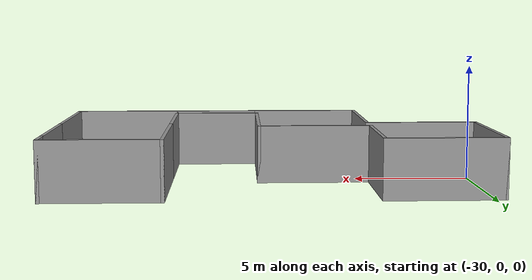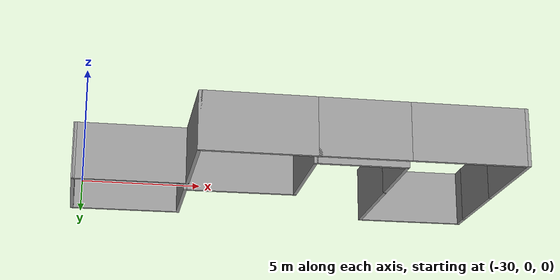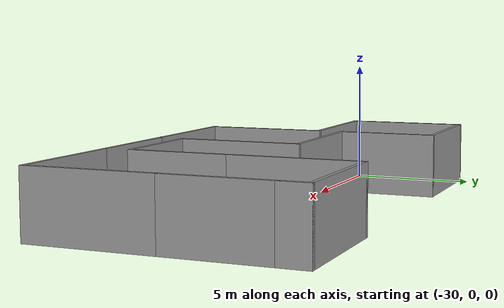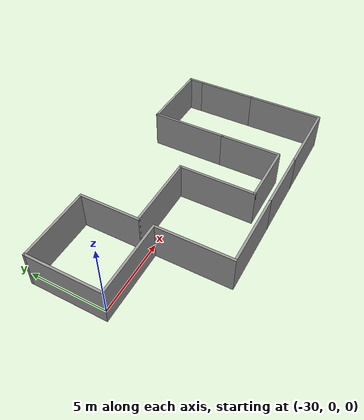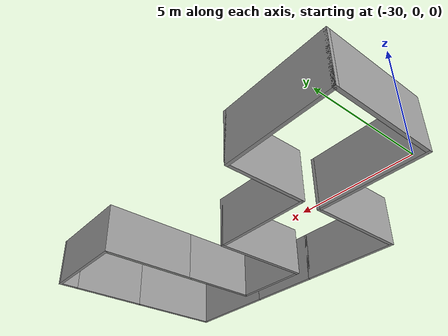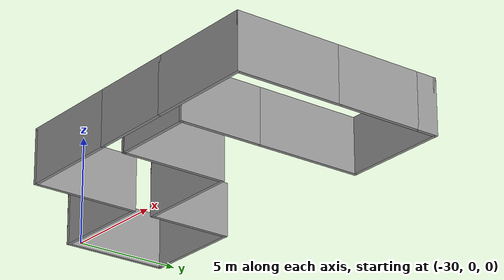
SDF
<?xml version='1.0'?>
<sdf version='1.6'>
  <model name='course1'>
    <pose frame=''>-21.2127 -0.339408 0 0 -0 0</pose>
    <link name='Wall_16'>
      <collision name='Wall_16_Collision'>
        <geometry>
          <box>
            <size>5 0.15 2.5</size>
          </box>
        </geometry>
        <pose frame=''>0 0 1.25 0 -0 0</pose>
      </collision>
      <visual name='Wall_16_Visual'>
        <pose frame=''>0 0 1.25 0 -0 0</pose>
        <geometry>
          <box>
            <size>5 0.15 2.5</size>
          </box>
        </geometry>
        <material>
          <script>
            <uri>file://media/materials/scripts/gazebo.material</uri>
            <name>Gazebo/Grey</name>
          </script>
          <ambient>1 1 1 1</ambient>
        </material>
        <meta>
          <layer>0</layer>
        </meta>
      </visual>
      <pose frame=''>-9.2 2.425 0 0 -0 -1.5708</pose>
    </link>
    <link name='Wall_17'>
      <collision name='Wall_17_Collision'>
        <geometry>
          <box>
            <size>5 0.15 2.5</size>
          </box>
        </geometry>
        <pose frame=''>0 0 1.25 0 -0 0</pose>
      </collision>
      <visual name='Wall_17_Visual'>
        <pose frame=''>0 0 1.25 0 -0 0</pose>
        <geometry>
          <box>
            <size>5 0.15 2.5</size>
          </box>
        </geometry>
        <material>
          <script>
            <uri>file://media/materials/scripts/gazebo.material</uri>
            <name>Gazebo/Grey</name>
          </script>
          <ambient>1 1 1 1</ambient>
        </material>
        <meta>
          <layer>0</layer>
        </meta>
      </visual>
      <pose frame=''>-6.775 0 0 0 -0 0</pose>
    </link>
    <link name='Wall_18'>
      <collision name='Wall_18_Collision'>
        <geometry>
          <box>
            <size>5 0.15 2.5</size>
          </box>
        </geometry>
        <pose frame=''>0 0 1.25 0 -0 0</pose>
      </collision>
      <visual name='Wall_18_Visual'>
        <pose frame=''>0 0 1.25 0 -0 0</pose>
        <geometry>
          <box>
            <size>5 0.15 2.5</size>
          </box>
        </geometry>
        <material>
          <script>
            <uri>file://media/materials/scripts/gazebo.material</uri>
            <name>Gazebo/Grey</name>
          </script>
          <ambient>1 1 1 1</ambient>
        </material>
        <meta>
          <layer>0</layer>
        </meta>
      </visual>
      <pose frame=''>-4.35 -2.425 0 0 -0 -1.5708</pose>
    </link>
    <link name='Wall_19'>
      <collision name='Wall_19_Collision'>
        <geometry>
          <box>
            <size>5 0.15 2.5</size>
          </box>
        </geometry>
        <pose frame=''>0 0 1.25 0 -0 0</pose>
      </collision>
      <visual name='Wall_19_Visual'>
        <pose frame=''>0 0 1.25 0 -0 0</pose>
        <geometry>
          <box>
            <size>5 0.15 2.5</size>
          </box>
        </geometry>
        <material>
          <script>
            <uri>file://media/materials/scripts/gazebo.material</uri>
            <name>Gazebo/Grey</name>
          </script>
          <ambient>1 1 1 1</ambient>
        </material>
        <meta>
          <layer>0</layer>
        </meta>
      </visual>
      <pose frame=''>-1.925 -4.85 0 0 -0 0</pose>
    </link>
    <link name='Wall_21'>
      <collision name='Wall_21_Collision'>
        <geometry>
          <box>
            <size>5 0.15 2.5</size>
          </box>
        </geometry>
        <pose frame=''>0 0 1.25 0 -0 0</pose>
      </collision>
      <visual name='Wall_21_Visual'>
        <pose frame=''>0 0 1.25 0 -0 0</pose>
        <geometry>
          <box>
            <size>5 0.15 2.5</size>
          </box>
        </geometry>
        <material>
          <script>
            <uri>file://media/materials/scripts/gazebo.material</uri>
            <name>Gazebo/Grey</name>
          </script>
          <ambient>1 1 1 1</ambient>
        </material>
        <meta>
          <layer>0</layer>
        </meta>
      </visual>
      <pose frame=''>-6.775 4.85 0 0 -0 0</pose>
    </link>
    <link name='Wall_22'>
      <collision name='Wall_22_Collision'>
        <geometry>
          <box>
            <size>4 0.15 2.5</size>
          </box>
        </geometry>
        <pose frame=''>0 0 1.25 0 -0 0</pose>
      </collision>
      <visual name='Wall_22_Visual'>
        <pose frame=''>0 0 1.25 0 -0 0</pose>
        <geometry>
          <box>
            <size>4 0.15 2.5</size>
          </box>
        </geometry>
        <material>
          <script>
            <uri>file://media/materials/scripts/gazebo.material</uri>
            <name>Gazebo/Grey</name>
          </script>
          <ambient>1 1 1 1</ambient>
        </material>
        <meta>
          <layer>0</layer>
        </meta>
      </visual>
      <pose frame=''>-4.35 2.925 0 0 -0 -1.5708</pose>
    </link>
    <link name='Wall_23'>
      <collision name='Wall_23_Collision'>
        <geometry>
          <box>
            <size>5 0.15 2.5</size>
          </box>
        </geometry>
        <pose frame=''>0 0 1.25 0 -0 0</pose>
      </collision>
      <visual name='Wall_23_Visual'>
        <pose frame=''>0 0 1.25 0 -0 0</pose>
        <geometry>
          <box>
            <size>5 0.15 2.5</size>
          </box>
        </geometry>
        <material>
          <script>
            <uri>file://media/materials/scripts/gazebo.material</uri>
            <name>Gazebo/Grey</name>
          </script>
          <ambient>1 1 1 1</ambient>
        </material>
        <meta>
          <layer>0</layer>
        </meta>
      </visual>
      <pose frame=''>-1.925 1 0 0 -0 0</pose>
    </link>
    <link name='Wall_24'>
      <collision name='Wall_24_Collision'>
        <geometry>
          <box>
            <size>5 0.15 2.5</size>
          </box>
        </geometry>
        <pose frame=''>0 0 1.25 0 -0 0</pose>
      </collision>
      <visual name='Wall_24_Visual'>
        <pose frame=''>0 0 1.25 0 -0 0</pose>
        <geometry>
          <box>
            <size>5 0.15 2.5</size>
          </box>
        </geometry>
        <material>
          <script>
            <uri>file://media/materials/scripts/gazebo.material</uri>
            <name>Gazebo/Grey</name>
          </script>
          <ambient>1 1 1 1</ambient>
        </material>
        <meta>
          <layer>0</layer>
        </meta>
      </visual>
      <pose frame=''>0.499999 -1.425 0 0 -0 -1.5708</pose>
    </link>
    <link name='Wall_25'>
      <collision name='Wall_25_Collision'>
        <geometry>
          <box>
            <size>4 0.15 2.5</size>
          </box>
        </geometry>
        <pose frame=''>0 0 1.25 0 -0 0</pose>
      </collision>
      <visual name='Wall_25_Visual'>
        <pose frame=''>0 0 1.25 0 -0 0</pose>
        <geometry>
          <box>
            <size>4 0.15 2.5</size>
          </box>
        </geometry>
        <material>
          <script>
            <uri>file://media/materials/scripts/gazebo.material</uri>
            <name>Gazebo/Grey</name>
          </script>
          <ambient>1 1 1 1</ambient>
        </material>
        <meta>
          <layer>0</layer>
        </meta>
      </visual>
      <pose frame=''>2.425 -3.85 0 0 -0 0</pose>
    </link>
    <link name='Wall_27'>
      <collision name='Wall_27_Collision'>
        <geometry>
          <box>
            <size>4 0.15 2.5</size>
          </box>
        </geometry>
        <pose frame=''>0 0 1.25 0 -0 0</pose>
      </collision>
      <visual name='Wall_27_Visual'>
        <pose frame=''>0 0 1.25 0 -0 0</pose>
        <geometry>
          <box>
            <size>4 0.15 2.5</size>
          </box>
        </geometry>
        <material>
          <script>
            <uri>file://media/materials/scripts/gazebo.material</uri>
            <name>Gazebo/Grey</name>
          </script>
          <ambient>1 1 1 1</ambient>
        </material>
        <meta>
          <layer>0</layer>
        </meta>
      </visual>
      <pose frame=''>2.425 -4.85 0 0 -0 0</pose>
    </link>
    <link name='Wall_28'>
      <collision name='Wall_28_Collision'>
        <geometry>
          <box>
            <size>5 0.15 2.5</size>
          </box>
        </geometry>
        <pose frame=''>0 0 1.25 0 -0 0</pose>
      </collision>
      <visual name='Wall_28_Visual'>
        <pose frame=''>0 0 1.25 0 -0 0</pose>
        <geometry>
          <box>
            <size>5 0.15 2.5</size>
          </box>
        </geometry>
        <material>
          <script>
            <uri>file://media/materials/scripts/gazebo.material</uri>
            <name>Gazebo/Grey</name>
          </script>
          <ambient>1 1 1 1</ambient>
        </material>
        <meta>
          <layer>0</layer>
        </meta>
      </visual>
      <pose frame=''>6.775 -4.85 0 0 -0 0</pose>
    </link>
    <link name='Wall_29'>
      <collision name='Wall_29_Collision'>
        <geometry>
          <box>
            <size>5 0.15 2.5</size>
          </box>
        </geometry>
        <pose frame=''>0 0 1.25 0 -0 0</pose>
      </collision>
      <visual name='Wall_29_Visual'>
        <pose frame=''>0 0 1.25 0 -0 0</pose>
        <geometry>
          <box>
            <size>5 0.15 2.5</size>
          </box>
        </geometry>
        <material>
          <script>
            <uri>file://media/materials/scripts/gazebo.material</uri>
            <name>Gazebo/Grey</name>
          </script>
          <ambient>1 1 1 1</ambient>
        </material>
        <meta>
          <layer>0</layer>
        </meta>
      </visual>
      <pose frame=''>9.2 -2.425 0 0 -0 1.5708</pose>
    </link>
    <link name='Wall_31'>
      <collision name='Wall_31_Collision'>
        <geometry>
          <box>
            <size>4 0.15 2.5</size>
          </box>
        </geometry>
        <pose frame=''>0 0 1.25 0 -0 0</pose>
      </collision>
      <visual name='Wall_31_Visual'>
        <pose frame=''>0 0 1.25 0 -0 0</pose>
        <geometry>
          <box>
            <size>4 0.15 2.5</size>
          </box>
        </geometry>
        <material>
          <script>
            <uri>file://media/materials/scripts/gazebo.material</uri>
            <name>Gazebo/Grey</name>
          </script>
          <ambient>1 1 1 1</ambient>
        </material>
        <meta>
          <layer>0</layer>
        </meta>
      </visual>
      <pose frame=''>4.35 -1.925 0 0 -0 1.5708</pose>
    </link>
    <link name='Wall_33'>
      <collision name='Wall_33_Collision'>
        <geometry>
          <box>
            <size>5 0.15 2.5</size>
          </box>
        </geometry>
        <pose frame=''>0 0 1.25 0 -0 0</pose>
      </collision>
      <visual name='Wall_33_Visual'>
        <pose frame=''>0 0 1.25 0 -0 0</pose>
        <geometry>
          <box>
            <size>5 0.15 2.5</size>
          </box>
        </geometry>
        <material>
          <script>
            <uri>file://media/materials/scripts/gazebo.material</uri>
            <name>Gazebo/Grey</name>
          </script>
          <ambient>1 1 1 1</ambient>
        </material>
        <meta>
          <layer>0</layer>
        </meta>
      </visual>
      <pose frame=''>4.35 2.425 0 0 -0 1.5708</pose>
    </link>
    <link name='Wall_36'>
      <collision name='Wall_36_Collision'>
        <geometry>
          <box>
            <size>4 0.15 2.5</size>
          </box>
        </geometry>
        <pose frame=''>0 0 1.25 0 -0 0</pose>
      </collision>
      <visual name='Wall_36_Visual'>
        <pose frame=''>0 0 1.25 0 -0 0</pose>
        <geometry>
          <box>
            <size>4 0.15 2.5</size>
          </box>
        </geometry>
        <material>
          <script>
            <uri>file://media/materials/scripts/gazebo.material</uri>
            <name>Gazebo/Grey</name>
          </script>
          <ambient>1 1 1 1</ambient>
        </material>
        <meta>
          <layer>0</layer>
        </meta>
      </visual>
      <pose frame=''>9.2 1.925 0 0 -0 1.5708</pose>
    </link>
    <link name='Wall_43'>
      <collision name='Wall_43_Collision'>
        <geometry>
          <box>
            <size>5 0.15 2.5</size>
          </box>
        </geometry>
        <pose frame=''>0 0 1.25 0 -0 0</pose>
      </collision>
      <visual name='Wall_43_Visual'>
        <pose frame=''>0 0 1.25 0 -0 0</pose>
        <geometry>
          <box>
            <size>5 0.15 2.5</size>
          </box>
        </geometry>
        <material>
          <script>
            <uri>file://media/materials/scripts/gazebo.material</uri>
            <name>Gazebo/Grey</name>
          </script>
          <ambient>1 1 1 1</ambient>
        </material>
        <meta>
          <layer>0</layer>
        </meta>
      </visual>
      <pose frame=''>6.775 4.85 0 0 -0 0</pose>
    </link>
    <link name='Wall_44'>
      <collision name='Wall_44_Collision'>
        <geometry>
          <box>
            <size>1.15 0.15 2.5</size>
          </box>
        </geometry>
        <pose frame=''>0 0 1.25 0 -0 0</pose>
      </collision>
      <visual name='Wall_44_Visual'>
        <pose frame=''>0 0 1.25 0 -0 0</pose>
        <geometry>
          <box>
            <size>1.15 0.15 2.5</size>
          </box>
        </geometry>
        <material>
          <script>
            <uri>file://media/materials/scripts/gazebo.material</uri>
            <name>Gazebo/Grey</name>
          </script>
          <ambient>1 1 1 1</ambient>
        </material>
        <meta>
          <layer>0</layer>
        </meta>
      </visual>
      <pose frame=''>9.2 4.35 0 0 -0 -1.5708</pose>
    </link>
    <static>1</static>
  </model>
</sdf>
